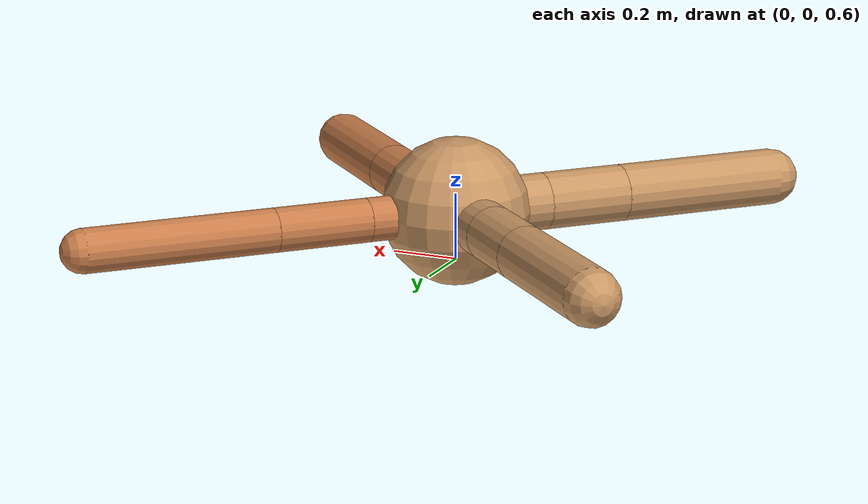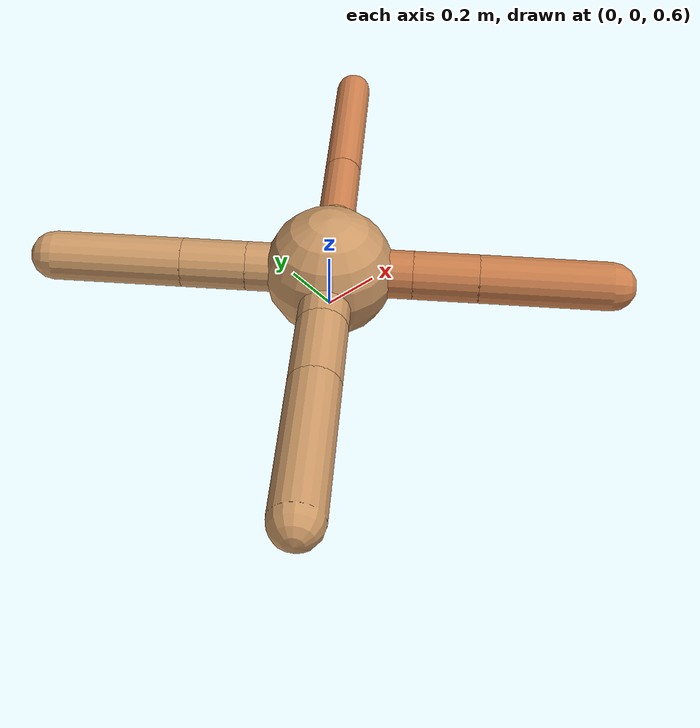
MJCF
<?xml version="1.0" ?>
<mujoco model="ant">

	<compiler angle="degree" coordinate="local" inertiafromgeom="true"/>

	<option integrator="RK4" timestep="0.01"/>

	<custom>

		<numeric data="0.0 0.0 0.55 1.0 0.0 0.0 0.0 0.0 1.0 0.0 -1.0 0.0 -1.0 0.0 1.0" name="init_qpos"/>

	</custom>

	<default>

		<joint armature="1" damping="1" limited="true"/>

		<geom conaffinity="0" condim="3" density="5.0" friction="1.5 0.1 0.1" margin="0.01" rgba="0.8 0.6 0.4 1"/>

	</default>

	<worldbody>

		<body name="torso" pos="0 0 0.75">

			<geom name="torso_geom" pos="0 0 0" size="0.2221237511382572" type="sphere"/>

			<!--joint armature="0" damping="0" limited="false" margin="0.01" name="root" pos="0 0 0" type="free"/-->

			<body name="front_left_leg" pos="0 0 0">

				<geom fromto="0 0 0 0.2 0.2 0" name="aux_1_geom" size="0.06629693661059123" type="capsule" rgba=".8 .5 .3 1"/>

				<body name="aux_1" pos="0.2 0.2 0">

					<joint axis="0 0 1" name="hip_1" pos="0.0 0.0 0.0" range="-40 40" type="hinge"/>

					<geom fromto="0 0 0 0.20301821413431972 0.20301821413431972 0" name="left_leg_geom" size="0.06629693661059123" type="capsule" rgba=".8 .5 .3 1"/>

					<body pos="0.20301821413431972 0.20301821413431972 0" name="front_left_foot">

						<joint axis="-1 1 0" name="ankle_1" pos="0.0 0.0 0.0" range="30 100" type="hinge"/>

						<geom fromto="0 0 0 0.40603642826863945 0.40603642826863945 0" name="left_ankle_geom" size="0.06629693661059123" type="capsule" rgba=".8 .5 .3 1"/>

					</body>

				</body>

			</body>

			<body name="front_right_leg" pos="0 0 0">

				<geom fromto="0 0 0 -0.2 0.2 0" name="aux_2_geom" size="0.08434364838098461" type="capsule"/>

				<body name="aux_2" pos="-0.2 0.2 0">

					<joint axis="0 0 1" name="hip_2" pos="0.0 0.0 0.0" range="-40 40" type="hinge"/>

					<geom fromto="0 0 0 -0.15745839524324642 0.15745839524324642 0" name="right_leg_geom" size="0.08434364838098461" type="capsule"/>

					<body pos="-0.15745839524324642 0.15745839524324642 0" name="front_right_foot">

						<joint axis="1 1 0" name="ankle_2" pos="0.0 0.0 0.0" range="-100 -30" type="hinge"/>

						<geom fromto="0 0 0 -0.31491679048649285 0.31491679048649285 0" name="right_ankle_geom" size="0.08434364838098461" type="capsule"/>

					</body>

				</body>

			</body>

			<body name="left_back_leg" pos="0 0 0">

				<geom fromto="0 0 0 -0.2 -0.2 0" name="aux_3_geom" size="0.08702579620399675" type="capsule"/>

				<body name="aux_3" pos="-0.2 -0.2 0">

					<joint axis="0 0 1" name="hip_3" pos="0.0 0.0 0.0" range="-40 40" type="hinge"/>

					<geom fromto="0 0 0 -0.181388603303957 -0.181388603303957 0" name="back_leg_geom" size="0.08702579620399675" type="capsule"/>

					<body pos="-0.181388603303957 -0.181388603303957 0" name="left_back_foot">

						<joint axis="-1 1 0" name="ankle_3" pos="0.0 0.0 0.0" range="-100 -30" type="hinge"/>

						<geom fromto="0 0 0 -0.362777206607914 -0.362777206607914 0" name="third_ankle_geom" size="0.08702579620399675" type="capsule"/>

					</body>

				</body>

			</body>

			<body name="right_back_leg" pos="0 0 0">

				<geom fromto="0 0 0 0.2 -0.2 0" name="aux_4_geom" size="0.08283767269620412" type="capsule" rgba=".8 .5 .3 1"/>

				<body name="aux_4" pos="0.2 -0.2 0">

					<joint axis="0 0 1" name="hip_4" pos="0.0 0.0 0.0" range="-40 40" type="hinge"/>

					<geom fromto="0 0 0 0.1575407953083574 -0.1575407953083574 0" name="rightback_leg_geom" size="0.08283767269620412" type="capsule" rgba=".8 .5 .3 1"/>

					<body pos="0.1575407953083574 -0.1575407953083574 0" name="right_back_foot">

						<joint axis="1 1 0" name="ankle_4" pos="0.0 0.0 0.0" range="30 100" type="hinge"/>

						<geom fromto="0 0 0 0.3150815906167148 -0.3150815906167148 0" name="fourth_ankle_geom" size="0.08283767269620412" type="capsule" rgba=".8 .5 .3 1"/>

					</body>

				</body>

			</body>

		</body>

	</worldbody>

	<actuator>

		<motor ctrllimited="true" ctrlrange="-1.0 1.0" joint="hip_4" gear="150"/>

		<motor ctrllimited="true" ctrlrange="-1.0 1.0" joint="ankle_4" gear="150"/>

		<motor ctrllimited="true" ctrlrange="-1.0 1.0" joint="hip_1" gear="150"/>

		<motor ctrllimited="true" ctrlrange="-1.0 1.0" joint="ankle_1" gear="150"/>

		<motor ctrllimited="true" ctrlrange="-1.0 1.0" joint="hip_2" gear="150"/>

		<motor ctrllimited="true" ctrlrange="-1.0 1.0" joint="ankle_2" gear="150"/>

		<motor ctrllimited="true" ctrlrange="-1.0 1.0" joint="hip_3" gear="150"/>

		<motor ctrllimited="true" ctrlrange="-1.0 1.0" joint="ankle_3" gear="150"/>

	</actuator>

</mujoco>
